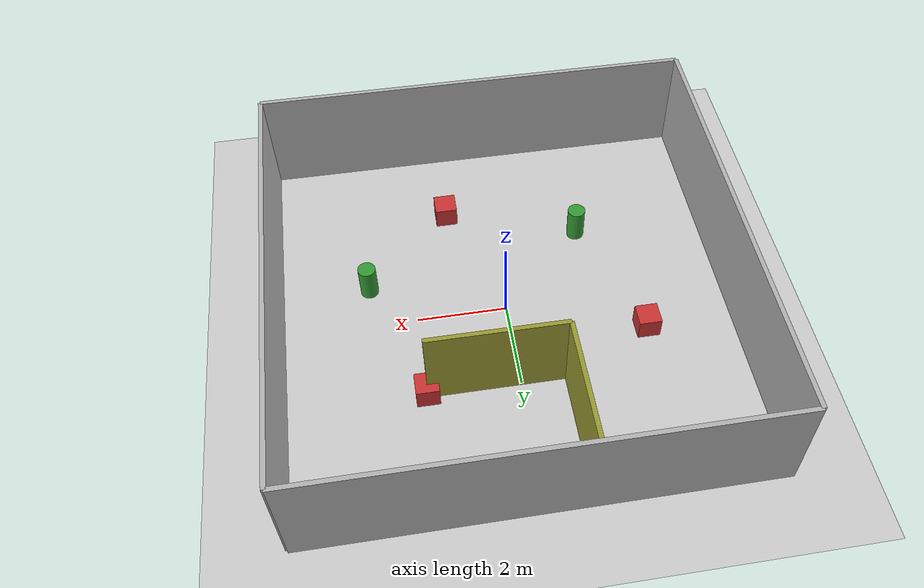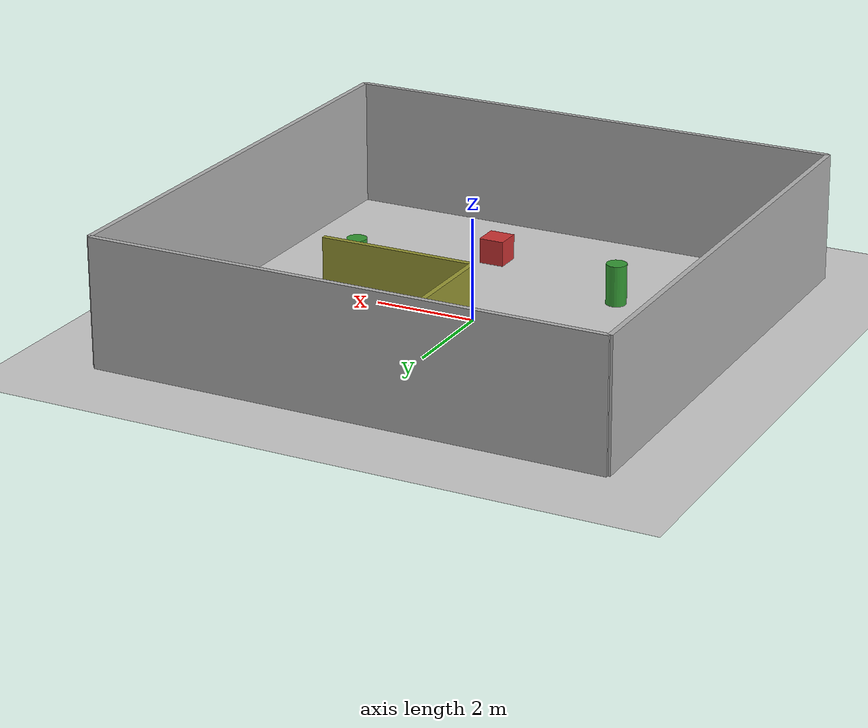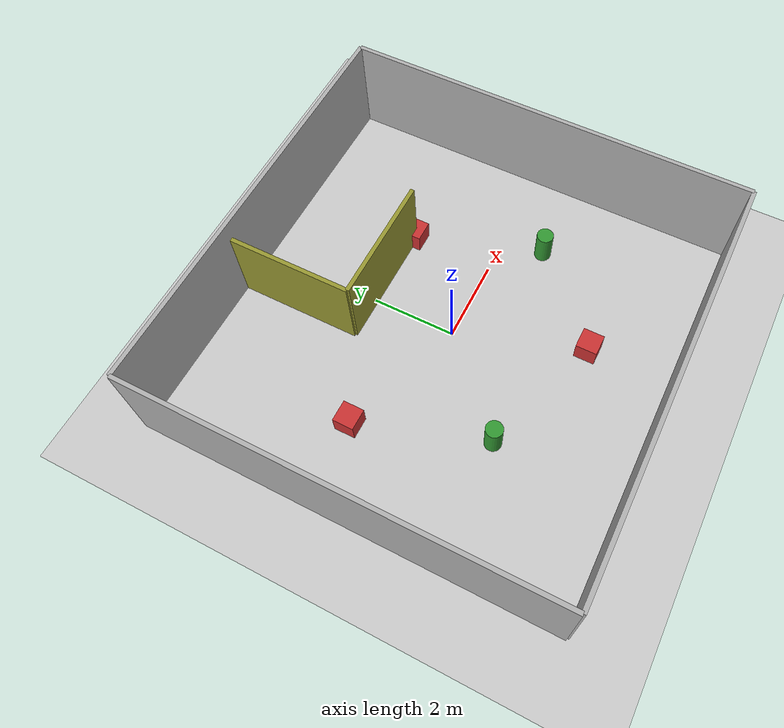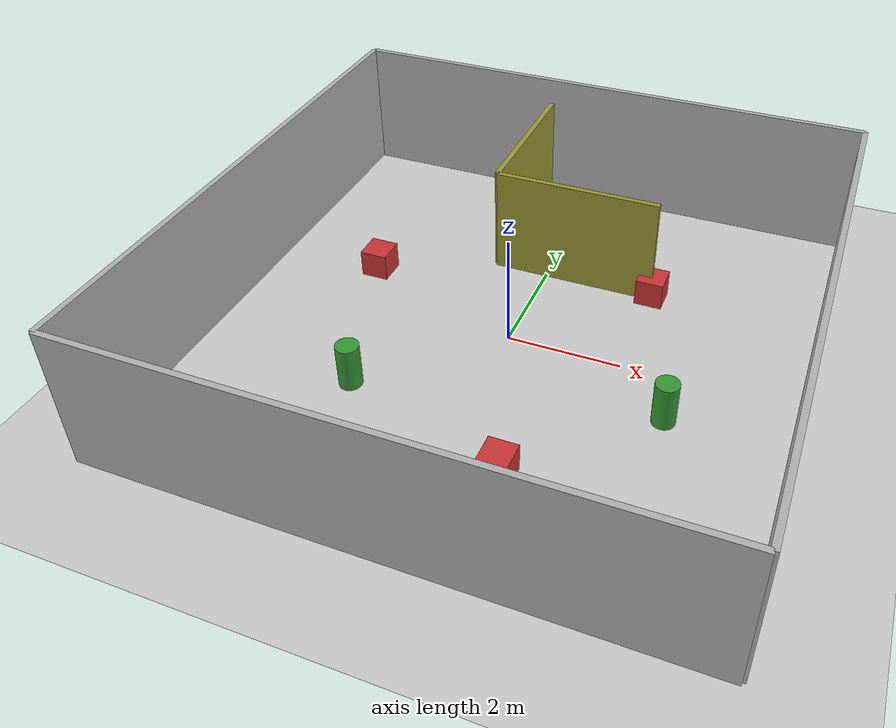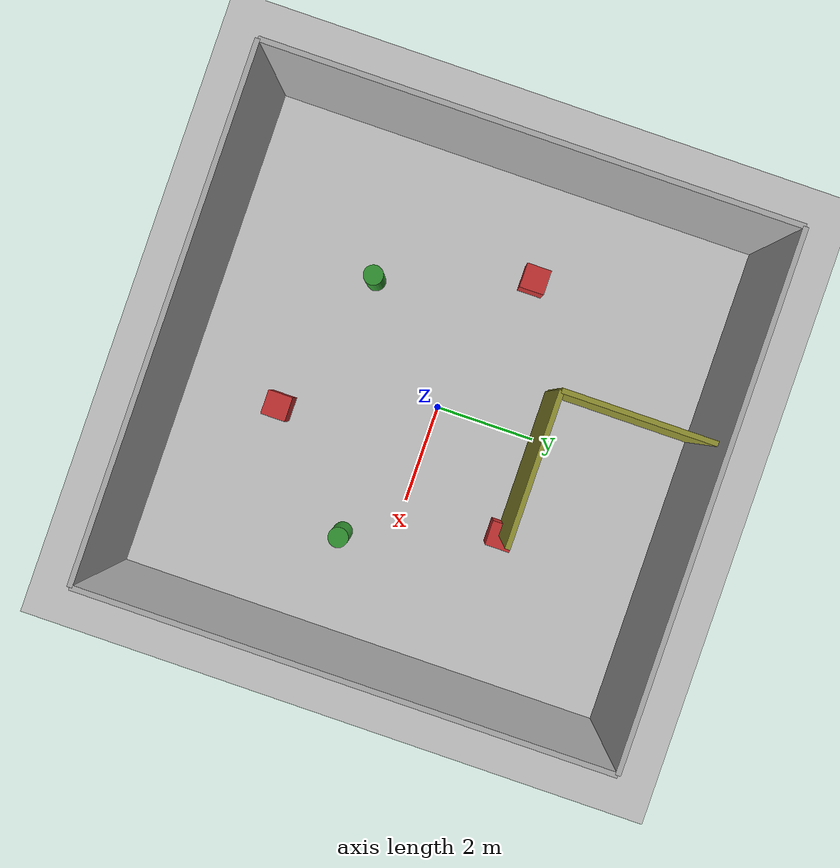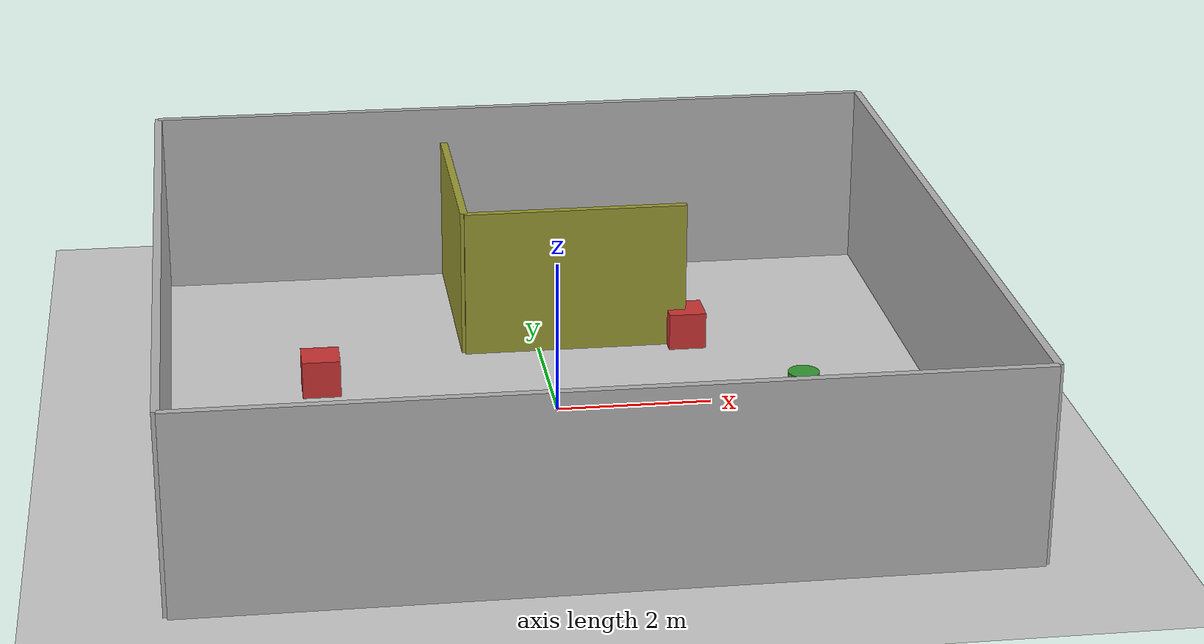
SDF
<?xml version="1.0"?>
<sdf version="1.9">
  <world name="ackermann_test">

    <!-- Physics -->
    <physics name="1ms" type="ignored">
      <max_step_size>0.001</max_step_size>
      <real_time_factor>1.0</real_time_factor>
    </physics>

    <!-- Plugins -->
    <plugin filename="gz-sim-physics-system" name="gz::sim::systems::Physics"/>
    <plugin filename="gz-sim-user-commands-system" name="gz::sim::systems::UserCommands"/>
    <plugin filename="gz-sim-scene-broadcaster-system" name="gz::sim::systems::SceneBroadcaster"/>
    <plugin filename="gz-sim-sensors-system" name="gz::sim::systems::Sensors">
      <render_engine>ogre2</render_engine>
    </plugin>
    <plugin filename="gz-sim-contact-system" name="gz::sim::systems::Contact"/>

    <!-- GUI: Grid3D covers 100x100m factory -->
    <gui>
      <plugin filename="Grid3D" name="Grid3D">
        <cell_count>100</cell_count>
        <cell_size>1</cell_size>
        <vertical_cell_count>0</vertical_cell_count>
      </plugin>
    </gui>

    <!-- Sun -->
    <light type="directional" name="sun">
      <cast_shadows>true</cast_shadows>
      <pose>0 0 10 0 0 0</pose>
      <diffuse>0.8 0.8 0.8 1</diffuse>
      <specular>0.2 0.2 0.2 1</specular>
      <attenuation>
        <range>1000</range>
        <constant>0.9</constant>
        <linear>0.01</linear>
        <quadratic>0.001</quadratic>
      </attenuation>
      <direction>-0.5 0.1 -0.9</direction>
    </light>

    <!-- Ground plane -->
    <model name="ground_plane">
      <static>true</static>
      <link name="link">
        <collision name="collision">
          <geometry>
            <plane><normal>0 0 1</normal><size>100 100</size></plane>
          </geometry>
        </collision>
        <visual name="visual">
          <geometry>
            <plane><normal>0 0 1</normal><size>100 100</size></plane>
          </geometry>
          <material>
            <ambient>0.8 0.8 0.8 1</ambient>
            <diffuse>0.8 0.8 0.8 1</diffuse>
          </material>
        </visual>
      </link>
    </model>

    <!-- ========== Room walls (10m x 10m, centered at origin) ========== -->

    <!-- North wall -->
    <model name="wall_north">
      <static>true</static>
      <pose>0 5 1.25 0 0 0</pose>
      <link name="link">
        <collision name="collision">
          <geometry><box><size>10 0.1 2.5</size></box></geometry>
        </collision>
        <visual name="visual">
          <geometry><box><size>10 0.1 2.5</size></box></geometry>
          <material>
            <ambient>0.7 0.7 0.7 1</ambient>
            <diffuse>0.7 0.7 0.7 1</diffuse>
          </material>
        </visual>
      </link>
    </model>

    <!-- South wall -->
    <model name="wall_south">
      <static>true</static>
      <pose>0 -5 1.25 0 0 0</pose>
      <link name="link">
        <collision name="collision">
          <geometry><box><size>10 0.1 2.5</size></box></geometry>
        </collision>
        <visual name="visual">
          <geometry><box><size>10 0.1 2.5</size></box></geometry>
          <material>
            <ambient>0.7 0.7 0.7 1</ambient>
            <diffuse>0.7 0.7 0.7 1</diffuse>
          </material>
        </visual>
      </link>
    </model>

    <!-- East wall -->
    <model name="wall_east">
      <static>true</static>
      <pose>5 0 1.25 0 0 0</pose>
      <link name="link">
        <collision name="collision">
          <geometry><box><size>0.1 10 2.5</size></box></geometry>
        </collision>
        <visual name="visual">
          <geometry><box><size>0.1 10 2.5</size></box></geometry>
          <material>
            <ambient>0.7 0.7 0.7 1</ambient>
            <diffuse>0.7 0.7 0.7 1</diffuse>
          </material>
        </visual>
      </link>
    </model>

    <!-- West wall -->
    <model name="wall_west">
      <static>true</static>
      <pose>-5 0 1.25 0 0 0</pose>
      <link name="link">
        <collision name="collision">
          <geometry><box><size>0.1 10 2.5</size></box></geometry>
        </collision>
        <visual name="visual">
          <geometry><box><size>0.1 10 2.5</size></box></geometry>
          <material>
            <ambient>0.7 0.7 0.7 1</ambient>
            <diffuse>0.7 0.7 0.7 1</diffuse>
          </material>
        </visual>
      </link>
    </model>

    <!-- ========== Obstacles ========== -->

    <!-- Box 1 -->
    <model name="box1">
      <static>true</static>
      <pose>2 2 0.25 0 0 0</pose>
      <link name="link">
        <collision name="collision">
          <geometry><box><size>0.5 0.5 0.5</size></box></geometry>
        </collision>
        <visual name="visual">
          <geometry><box><size>0.5 0.5 0.5</size></box></geometry>
          <material>
            <ambient>0.8 0.2 0.2 1</ambient>
            <diffuse>0.8 0.2 0.2 1</diffuse>
          </material>
        </visual>
      </link>
    </model>

    <!-- Box 2 -->
    <model name="box2">
      <static>true</static>
      <pose>-3 1 0.25 0 0 0</pose>
      <link name="link">
        <collision name="collision">
          <geometry><box><size>0.5 0.5 0.5</size></box></geometry>
        </collision>
        <visual name="visual">
          <geometry><box><size>0.5 0.5 0.5</size></box></geometry>
          <material>
            <ambient>0.8 0.2 0.2 1</ambient>
            <diffuse>0.8 0.2 0.2 1</diffuse>
          </material>
        </visual>
      </link>
    </model>

    <!-- Box 3 -->
    <model name="box3">
      <static>true</static>
      <pose>1 -3 0.25 0 0 0</pose>
      <link name="link">
        <collision name="collision">
          <geometry><box><size>0.5 0.5 0.5</size></box></geometry>
        </collision>
        <visual name="visual">
          <geometry><box><size>0.5 0.5 0.5</size></box></geometry>
          <material>
            <ambient>0.8 0.2 0.2 1</ambient>
            <diffuse>0.8 0.2 0.2 1</diffuse>
          </material>
        </visual>
      </link>
    </model>

    <!-- Cylinder 1 -->
    <model name="cylinder1">
      <static>true</static>
      <pose>-2 -2 0.4 0 0 0</pose>
      <link name="link">
        <collision name="collision">
          <geometry><cylinder><radius>0.2</radius><length>0.8</length></cylinder></geometry>
        </collision>
        <visual name="visual">
          <geometry><cylinder><radius>0.2</radius><length>0.8</length></cylinder></geometry>
          <material>
            <ambient>0.2 0.6 0.2 1</ambient>
            <diffuse>0.2 0.6 0.2 1</diffuse>
          </material>
        </visual>
      </link>
    </model>

    <!-- Cylinder 2 -->
    <model name="cylinder2">
      <static>true</static>
      <pose>3 -1 0.4 0 0 0</pose>
      <link name="link">
        <collision name="collision">
          <geometry><cylinder><radius>0.2</radius><length>0.8</length></cylinder></geometry>
        </collision>
        <visual name="visual">
          <geometry><cylinder><radius>0.2</radius><length>0.8</length></cylinder></geometry>
          <material>
            <ambient>0.2 0.6 0.2 1</ambient>
            <diffuse>0.2 0.6 0.2 1</diffuse>
          </material>
        </visual>
      </link>
    </model>

    <!-- L-shaped inner wall -->
    <model name="l_wall">
      <static>true</static>
      <link name="link">
        <!-- Vertical segment -->
        <collision name="collision_v">
          <pose>-1 3.5 1.0 0 0 0</pose>
          <geometry><box><size>0.1 3.0 2.0</size></box></geometry>
        </collision>
        <visual name="visual_v">
          <pose>-1 3.5 1.0 0 0 0</pose>
          <geometry><box><size>0.1 3.0 2.0</size></box></geometry>
          <material>
            <ambient>0.6 0.6 0.2 1</ambient>
            <diffuse>0.6 0.6 0.2 1</diffuse>
          </material>
        </visual>
        <!-- Horizontal segment -->
        <collision name="collision_h">
          <pose>0.5 2.0 1.0 0 0 0</pose>
          <geometry><box><size>3.0 0.1 2.0</size></box></geometry>
        </collision>
        <visual name="visual_h">
          <pose>0.5 2.0 1.0 0 0 0</pose>
          <geometry><box><size>3.0 0.1 2.0</size></box></geometry>
          <material>
            <ambient>0.6 0.6 0.2 1</ambient>
            <diffuse>0.6 0.6 0.2 1</diffuse>
          </material>
        </visual>
      </link>
    </model>

  </world>
</sdf>
